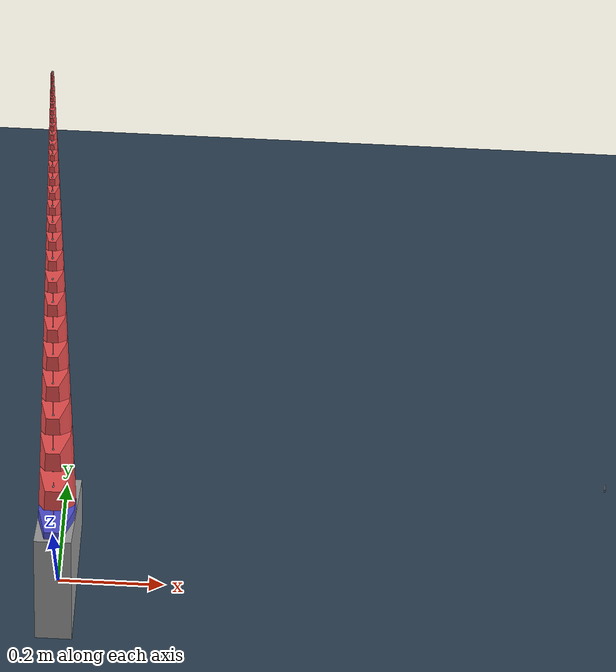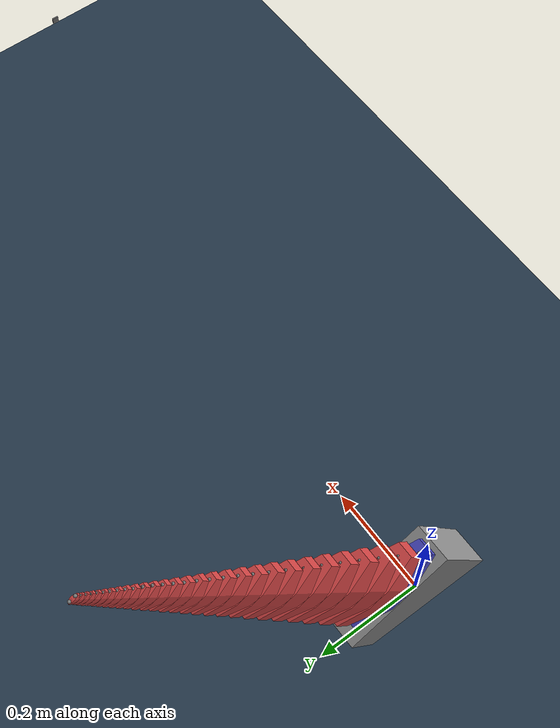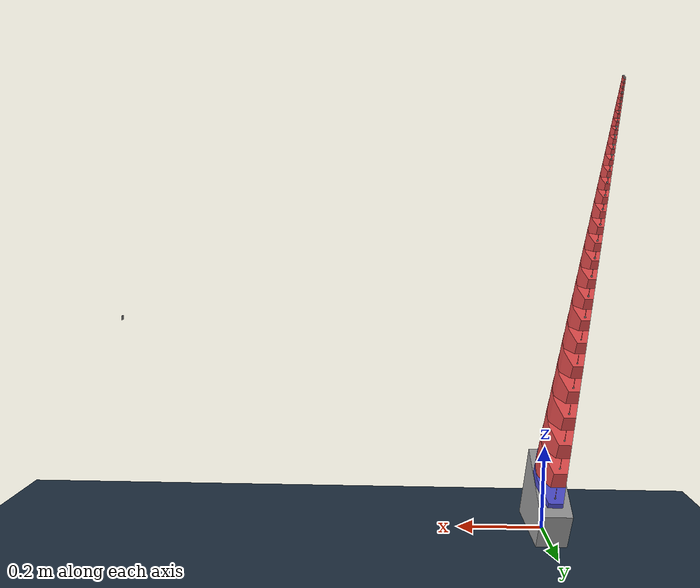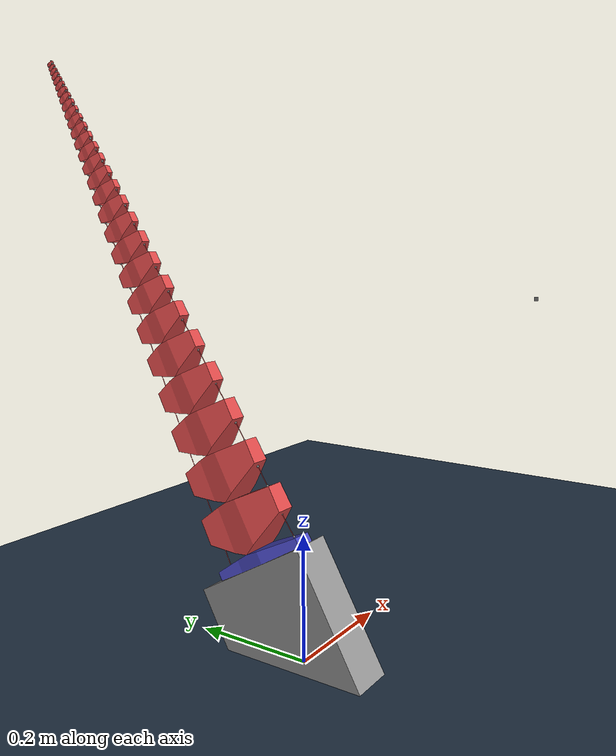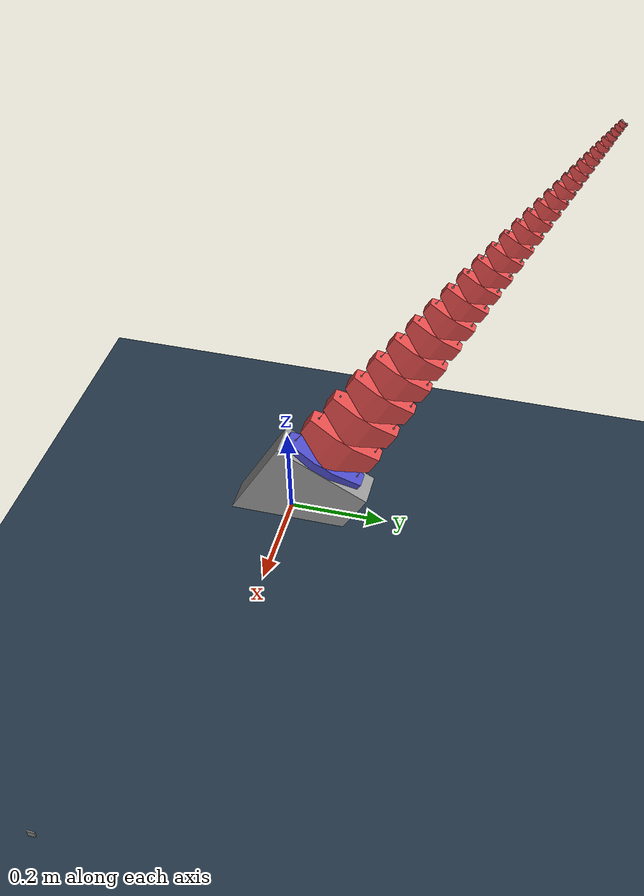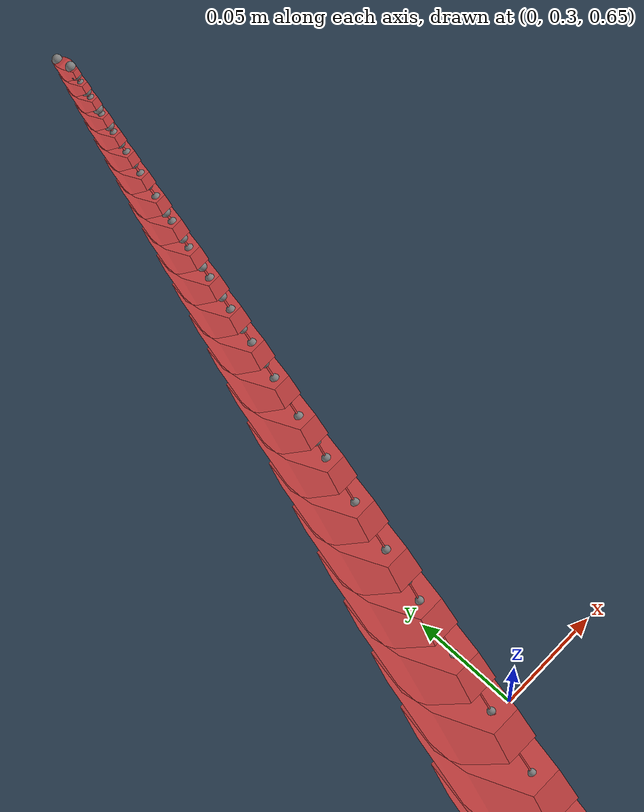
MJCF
<mujoco model="2DspiralLong">
<compiler angle="radian" />
<option gravity="0 0 0"/>
<size nconmax="5000" njmax="5000"/>

<default>
	<default class="freej">
		<joint type="free" damping="0" armature="0" limited="false"/>
	</default>
</default>

<asset>
	<mesh name="platform_mesh" file="3D/p_platform.STL" scale="0.001 0.001 0.001"/>
	<mesh name="base_mesh" file="3D/P_0Base.STL" scale="0.001 0.001 0.001"/>
	<mesh name="segment_mesh" file="3D/P_1_3.STL" scale="0.001 0.001 0.001"/>
	<mesh name="segment_2_mesh" file="3D/P_1_3.STL" scale="0.00091266 0.00091266 0.00091266"/>
	<mesh name="segment_3_mesh" file="3D/P_1_3.STL" scale="0.00083295 0.00083295 0.00083295"/>
	<mesh name="segment_4_mesh" file="3D/P_1_3.STL" scale="0.00076019 0.00076019 0.00076019"/>
	<mesh name="segment_5_mesh" file="3D/P_1_3.STL" scale="0.00069380 0.00069380 0.00069380"/>
	<mesh name="segment_6_mesh" file="3D/P_1_3.STL" scale="0.00063320 0.00063320 0.00063320"/>
	<mesh name="segment_7_mesh" file="3D/P_1_3.STL" scale="0.00057790 0.00057790 0.00057790"/>
	<mesh name="segment_8_mesh" file="3D/P_1_3.STL" scale="0.00052742 0.00052742 0.00052742"/>
	<mesh name="segment_9_mesh" file="3D/P_1_3.STL" scale="0.00048135 0.00048135 0.00048135"/>
	<mesh name="segment_10_mesh" file="3D/P_1_3.STL" scale="0.00043931 0.00043931 0.00043931"/>
	<mesh name="segment_11_mesh" file="3D/P_1_3.STL" scale="0.00040094 0.00040094 0.00040094"/>
	<mesh name="segment_12_mesh" file="3D/P_1_3.STL" scale="0.00036592 0.00036592 0.00036592"/>
	<mesh name="segment_13_mesh" file="3D/P_1_3.STL" scale="0.00033396 0.00033396 0.00033396"/>
	<mesh name="segment_14_mesh" file="3D/P_1_3.STL" scale="0.00030479 0.00030479 0.00030479"/>
	<mesh name="segment_15_mesh" file="3D/P_1_3.STL" scale="0.00027817 0.00027817 0.00027817"/>
	<mesh name="segment_16_mesh" file="3D/P_1_3.STL" scale="0.00025388 0.00025388 0.00025388"/>
	<mesh name="segment_17_mesh" file="3D/P_1_3.STL" scale="0.00023170 0.00023170 0.00023170"/>
	<mesh name="segment_18_mesh" file="3D/P_1_3.STL" scale="0.00021147 0.00021147 0.00021147"/>
	<mesh name="segment_19_mesh" file="3D/P_1_3.STL" scale="0.00019300 0.00019300 0.00019300"/>
	<mesh name="segment_20_mesh" file="3D/P_1_3.STL" scale="0.00017614 0.00017614 0.00017614"/>
	<mesh name="segment_21_mesh" file="3D/P_1_3.STL" scale="0.00016075 0.00016075 0.00016075"/>
	<mesh name="segment_22_mesh" file="3D/P_1_3.STL" scale="0.00014671 0.00014671 0.00014671"/>
	<mesh name="segment_23_mesh" file="3D/P_1_3.STL" scale="0.00013390 0.00013390 0.00013390"/>
	<mesh name="segment_24_mesh" file="3D/P_1_3.STL" scale="0.00012220 0.00012220 0.00012220"/>
	<mesh name="segment_25_mesh" file="3D/P_1_3.STL" scale="0.00011153 0.00011153 0.00011153"/>
	<mesh name="segment_26_mesh" file="3D/P_1_3.STL" scale="0.00010179 0.00010179 0.00010179"/>
	<mesh name="segment_27_mesh" file="3D/P_1_3.STL" scale="0.00009290 0.00009290 0.00009290"/>
	<mesh name="segment_28_mesh" file="3D/P_1_3.STL" scale="0.00008479 0.00008479 0.00008479"/>

	<texture name="texplane" type="2d" builtin="checker" rgb1=".2 .3 .4" rgb2=".1 0.15 0.2" width="512" height="512" mark="cross" markrgb=".8 .8 .8"/>
	<texture type="skybox" builtin="gradient" rgb1="0.3 0.5 0.7" rgb2="0 0 0" width="512" height="3072" />
	<material name="matplane" reflectance="0.3" texture="texplane" texrepeat="1 1" texuniform="true"/>
</asset>

<worldbody>

<geom name="ground" type="plane" size="10 10 1" pos="0 0 -0.1" quat="1 0 0 0" material="matplane" condim="1"/>
<light pos="1 0.5 0.7" dir="-1 -0.5 -1" directional="true" castshadow="false" diffuse="0.4 0.4 0.4" specular="0.1 0.1 0.1" />
<body name="mocapt" mocap="true" pos="1 0 0.5">
	<geom type="box" group="1" size="0.001 0.005 0.005" contype="0" conaffinity="0" rgba=".5 .5 .5 1"/>
</body>

    <!-- Platform body -->
    <body name="platform" pos="0 0 0">
        <geom type="mesh" mesh="platform_mesh" rgba="0.6 0.6 0.6 1"/>

        <!-- Base body sitting on top -->
        <body name="base" pos="0 0.070 0.140" euler="-0.524 0 1.57"> <!-- Adjust Z based on platform height -->
            <geom type="mesh" mesh="base_mesh" rgba="0.3 0.3 0.8 1"/>
			<site name="b_1" pos="-0.0725 0 0.020" size="0.002 0.002 0.002"/>
			<site name="b_2" pos="0.0725 0 0.020" size="0.002 0.002 0.002"/>
        </body>

		<!-- Manipulator Segments -->
		<body name="segment_1" pos="0 0.126 0.2362" euler="-0.524 3.14 1.571">
    	<geom type="mesh" mesh="segment_mesh" rgba="0.9 0.3 0.3 1"/>
		<joint name="Joint1" pos="0 0 0.086" axis="0 -1 0" limited="true" range="-0.523 0.523" stiffness="0.081647" damping="0.083295"/>
		<inertial pos="0 0 0" quat="1 0 0 0" mass="0.007602" diaginertia="0.000364 0.000364 0.00045711"/>
		<site name="s1_1" pos="0.069 0 0.052500" size="0.002 0.002 0.002"/>
		<site name="s1_2" pos="-0.069 0 0.052500" size="0.002 0.002 0.002"/>
		<site name="s1_3" pos="0.065 0 0.0050" size="0.002 0.002 0.002"/>
		<site name="s1_4" pos="-0.065 0 0.0050" size="0.002 0.002 0.002"/>

				    <body name="segment_2" pos="0 0 -0.0782" euler="0 0 0">
       				<geom type="mesh" mesh="segment_2_mesh" rgba="0.9 0.3 0.3 1"/>
					<joint name="Joint2" pos="0 0 0.0782" axis="0 -1 0" limited="true" range="-0.523 0.523" stiffness="0.034692" damping="0.00693847"/>
					<inertial pos="0 0 0" quat="1 0 0 0" mass="0.00577752" diaginertia="0.000303212 0.000303212 0.000380773"/>
					<site name="s2_1" pos="0.0635 0 0.050000" size="0.002 0.002 0.002"/>
					<site name="s2_2" pos="-0.0635 0 0.050000" size="0.002 0.002 0.002"/>
					<site name="s2_3" pos="0.060 0 0.0050" size="0.002 0.002 0.002"/>
					<site name="s2_4" pos="-0.060 0 0.0050" size="0.002 0.002 0.002"/>

												    <body name="segment_3" pos="0 0 -0.07135" euler="0 0 0">
													<geom type="mesh" mesh="segment_3_mesh" rgba="0.9 0.3 0.3 1"/>
													<joint name="Joint3" pos="0 0 0.07138" axis="0 -1 0" limited="true" range="-0.523 0.523" stiffness="0.0288984" damping="0.00577975"/>
													<inertial pos="0 0 0" quat="1 0 0 0" mass="0.00439092" diaginertia="0.000252576 0.000252576 0.000317184"/>
													<site name="s3_1" pos="0.058 0 0.045000" size="0.002 0.002 0.002"/>
													<site name="s3_2" pos="-0.058 0 0.045000" size="0.002 0.002 0.002"/>
													<site name="s3_3" pos="0.055 0 0.005000" size="0.002 0.002 0.002"/>
													<site name="s3_4" pos="-0.055 0 0.005000" size="0.002 0.002 0.002"/>

																		<body name="segment_4" pos="0 0 -0.06511" euler="0 0 0">
																		<geom type="mesh" mesh="segment_4_mesh" rgba="0.9 0.3 0.3 1"/>
																		<joint name="Joint4" pos="0 0 0.06537634" axis="0 -1 0" limited="true" range="-0.523 0.523" stiffness="0.0240724" damping="0.00481453"/>
																		<inertial pos="0 0 0" quat="1 0 0 0" mass="0.0033371" diaginertia="0.000210395 0.000210395 0.000264214"/>
																		<site name="s4_1" pos="0.0525 0 0.0400" size="0.002 0.002 0.002"/>
																		<site name="s4_2" pos="-0.0525 0 0.0400" size="0.002 0.002 0.002"/>
																		<site name="s4_3" pos="0.0500 0 0.00500" size="0.002 0.002 0.002"/>
																		<site name="s4_4" pos="-0.0500 0 0.00500" size="0.002 0.002 0.002"/>

																															<body name="segment_5" pos="0 0 -0.0594" euler="0 0 0">
																															<geom type="mesh" mesh="segment_5_mesh" rgba="0.9 0.3 0.3 1"/>
																															<joint name="Joint5" pos="0 0 0.0596668" axis="0 -1 0" limited="true" range="-0.523 0.523" stiffness="0.0200523" damping="0.0040105"/>
																															<inertial pos="0 0 0" quat="1 0 0 0" mass="0.00253619" diaginertia="0.000175259 0.000175259 0.00022009"/>
																															<site name="s5_1" pos="0.0475 0 0.037500" size="0.002 0.002 0.002"/>
																															<site name="s5_2" pos="-0.0475 0 0.037500" size="0.002 0.002 0.002"/>
																															<site name="s5_3" pos="0.0450 0 0.00500" size="0.002 0.002 0.002"/>
																															<site name="s5_4" pos="-0.0450 0 0.00500" size="0.002 0.002 0.002"/>

																																													<body name="segment_6" pos="0 0 -0.05420" euler="0 0 0">
																																													<geom type="mesh" mesh="segment_6_mesh" rgba="0.9 0.3 0.3 1"/>
																																													<joint name="Joint6" pos="0 0 0.0544552" axis="0 -1 0" limited="true" range="-0.523 0.523" stiffness="0.0167035" damping="0.00334075"/>
																																													<inertial pos="0 0 0" quat="1 0 0 0" mass="0.00192751" diaginertia="0.000145991 0.000145991 0.000183335"/>
																																													<site name="s6_1" pos="0.0425 0 0.0350" size="0.002 0.002 0.002"/>
																																													<site name="s6_2" pos="-0.0425 0 0.0350" size="0.002 0.002 0.002"/>
																																													<site name="s6_3" pos="0.0400 0 0.0050" size="0.002 0.002 0.002"/>
																																													<site name="s6_4" pos="-0.0400 0 0.0050" size="0.002 0.002 0.002"/>

											<body name="segment_7" pos="0 0 -0.0495" euler="0 0 0">
											<geom type="mesh" mesh="segment_7_mesh" rgba="0.9 0.3 0.3 1"/>
											<joint name="Joint7" pos="0 0 0.0496994" axis="0 -1 0" limited="true" range="-0.523 0.523" stiffness="0.0139141" damping="0.00278284"/>
											<inertial pos="0 0 0" quat="1 0 0 0" mass="0.0014649" diaginertia="0.000121611 0.000121611 0.000152718"/>
											<site name="s7_1" pos="0.0390 0 0.0310" size="0.002 0.002 0.002"/>
											<site name="s7_2" pos="-0.0390 0 0.0310" size="0.002 0.002 0.002"/>
											<site name="s7_3" pos="0.0365 0 0.003300" size="0.002 0.002 0.002"/>
											<site name="s7_4" pos="-0.0365 0 0.003300" size="0.002 0.002 0.002"/>

																									<body name="segment_8" pos="0 0 -0.04515" euler="0 0 0">
																									<geom type="mesh" mesh="segment_8_mesh" rgba="0.9 0.3 0.3 1"/>
																									<joint name="Joint8" pos="0 0 0.04535812" axis="0 -1 0" limited="true" range="-0.523 0.523" stiffness="0.0115904" damping="0.00231811"/>
																									<inertial pos="0 0 0" quat="1 0 0 0" mass="0.00111333" diaginertia="0.000101302 0.000101302 0.000127214"/>
																									<site name="s8_1" pos="0.0350 0 0.0295" size="0.002 0.002 0.002"/>
																									<site name="s8_2" pos="-0.0350 0 0.0295" size="0.002 0.002 0.002"/>
																									<site name="s8_3" pos="0.0327 0 0.0026" size="0.002 0.002 0.002"/>
																									<site name="s8_4" pos="-0.0327 0 0.0026" size="0.002 0.002 0.002"/>

													<body name="segment_9" pos="0 0 -0.0412" euler="0 0 0">
													<geom type="mesh" mesh="segment_9_mesh" rgba="0.9 0.3 0.3 1"/>
													<joint name="Joint9" pos="0 0 0.0413961" axis="0 -1 0" limited="true" range="-0.523 0.523" stiffness="0.00965481" damping="0.00193099"/>
													<inertial pos="0 0 0" quat="1 0 0 0" mass="0.000846129" diaginertia="8.43843e-05 8.43843e-05 0.000105969"/>
													<site name="s9_1" pos="0.0322 0 0.0260" size="0.002 0.002 0.002"/>
													<site name="s9_2" pos="-0.0322 0 0.0260" size="0.002 0.002 0.002"/>
													<site name="s9_3" pos="0.0300 0 0.0019" size="0.002 0.002 0.002"/>
													<site name="s9_4" pos="-0.0300 0 0.0019" size="0.002 0.002 0.002"/>

				<body name="segment_10" pos="0 0 -0.0376" euler="0 0 0">
				<geom type="mesh" mesh="segment_10_mesh" rgba="0.9 0.3 0.3 1"/>
				<joint name="Joint10" pos="0 0 0.03778066" axis="0 -1 0" limited="true" range="-0.523 0.523" stiffness="0.00804246" damping="0.00160851"/>
				<inertial pos="0 0 0" quat="1 0 0 0" mass="0.000643058" diaginertia="7.02921e-05 7.02921e-05 8.82726e-05"/>
				<site name="s10_1" pos="0.0294 0 0.0235" size="0.002 0.002 0.002"/>
				<site name="s10_2" pos="-0.0294 0 0.0235" size="0.002 0.002 0.002"/>
				<site name="s10_3" pos="0.0276 0 0.00212" size="0.002 0.002 0.002"/>
				<site name="s10_4" pos="-0.0276 0 0.00212" size="0.002 0.002 0.002"/>

										<body name="segment_11" pos="0 0 -0.0343" euler="0 0 0">
															<geom type="mesh" mesh="segment_11_mesh" rgba="0.9 0.3 0.3 1"/>
															<joint name="Joint11" pos="0 0 0.03448084" axis="0 -1 0" limited="true" range="-0.523 0.523" stiffness="0.00669937" damping="0.00133989"/>
															<inertial pos="0 0 0" quat="1 0 0 0" mass="0.000488724" diaginertia="5.85533e-05 5.85533e-05 7.3531e-05"/>
															<site name="s11_1" pos="0.0280 0 0.0215" size="0.002 0.002 0.002"/>
															<site name="s11_2" pos="-0.0280 0 0.0215" size="0.002 0.002 0.002"/>
															<site name="s11_3" pos="0.0249 0 0.0020" size="0.002 0.002 0.002"/>
															<site name="s11_4" pos="-0.0249 0 0.0020" size="0.002 0.002 0.002"/>

										<body name="segment_12" pos="0 0 -0.0313" euler="0 0 0">
										<geom type="mesh" mesh="segment_12_mesh" rgba="0.9 0.3 0.3 1"/>
										<joint name="Joint12" pos="0 0 0.03146912" axis="0 -1 0" limited="true" range="-0.523 0.523" stiffness="0.00558057" damping="0.00111613"/>
										<inertial pos="0 0 0" quat="1 0 0 0" mass="0.00037143" diaginertia="4.87749e-05 4.87749e-05 6.12514e-05"/>
										<site name="s12_1" pos="0.0240 0 0.0197" size="0.002 0.002 0.002"/>
										<site name="s12_2" pos="-0.0240 0 0.0197" size="0.002 0.002 0.002"/>
										<site name="s12_3" pos="0.0225 0 0.0020" size="0.002 0.002 0.002"/>
										<site name="s12_4" pos="-0.0225 0 0.0020" size="0.002 0.002 0.002"/>

																			<body name="segment_13" pos="0 0 -0.0286" euler="0 0 0">
																			<geom type="mesh" mesh="segment_13_mesh" rgba="0.9 0.3 0.3 1"/>
																			<joint name="Joint13" pos="0 0 0.02872056" axis="0 -1 0" limited="true" range="-0.523 0.523" stiffness="0.00464862" damping="0.000929735"/>
																			<inertial pos="0 0 0" quat="1 0 0 0" mass="0.000282287" diaginertia="4.06295e-05 4.06295e-05 5.10224e-05"/>
																			<site name="s13_1" pos="0.0221 0 0.0181" size="0.002 0.002 0.002"/>
																			<site name="s13_2" pos="-0.0221 0 0.0181" size="0.002 0.002 0.002"/>
																			<site name="s13_3" pos="0.0206 0 0.0020" size="0.002 0.002 0.002"/>
																			<site name="s13_4" pos="-0.0206 0 0.0020" size="0.002 0.002 0.002"/>

																				<body name="segment_14" pos="0 0 -0.0261" euler="0 0 0">
																				<geom type="mesh" mesh="segment_14_mesh" rgba="0.9 0.3 0.3 1"/>
																				<joint name="Joint14" pos="0 0 0.02621194" axis="0 -1 0" limited="true" range="-0.523 0.523" stiffness="0.0038723" damping="0.000774469"/>
																				<inertial pos="0 0 0" quat="1 0 0 0" mass="0.000214538" diaginertia="3.38444e-05 3.38444e-05 4.25016e-05"/>
																				<site name="s14_1" pos="0.0208 0 0.0167" size="0.002 0.002 0.002"/>
																				<site name="s14_2" pos="-0.0208 0 0.0167" size="0.002 0.002 0.002"/>
																				<site name="s14_3" pos="0.0185 0 0.0020" size="0.002 0.002 0.002"/>
																				<site name="s14_4" pos="-0.0185 0 0.0020" size="0.002 0.002 0.002"/>

																					<body name="segment_15" pos="0 0 -0.0238" euler="0 0 0">
																					<geom type="mesh" mesh="segment_15_mesh" rgba="0.9 0.3 0.3 1"/>
																					<joint name="Joint15" pos="0 0 0.02392262" axis="0 -1 0" limited="true" range="-0.523 0.523" stiffness="0.00322562" damping="0.000645133"/>
																					<inertial pos="0 0 0" quat="1 0 0 0" mass="0.000163049" diaginertia="2.81924e-05 2.81924e-05 3.54039e-05"/>
																					<site name="s15_1" pos="0.0176 0 0.0155" size="0.002 0.002 0.002"/>
																					<site name="s15_2" pos="-0.0176 0 0.0155" size="0.002 0.002 0.002"/>
																					<site name="s15_3" pos="0.0175 0 0.0020" size="0.002 0.002 0.002"/>
																					<site name="s15_4" pos="-0.0175 0 0.0020" size="0.002 0.002 0.002"/>

																					<body name="segment_16" pos="0 0 -0.0217" euler="0 0 0">
																						<geom type="mesh" mesh="segment_16_mesh" rgba="0.9 0.3 0.3 1"/>
																						<joint name="Joint16" pos="0 0 0.02183368" axis="0 -1 0" limited="true" range="-0.523 0.523" stiffness="0.00268694" damping="0.000537395"/>
																						<inertial pos="0 0 0" quat="1 0 0 0" mass="0.000123917" diaginertia="2.34842e-05 2.34842e-05 2.94914e-05"/>
																						<site name="s16_1" pos="0.0165 0 0.0144" size="0.002 0.002 0.002"/>
																						<site name="s16_2" pos="-0.0165 0 0.0144" size="0.002 0.002 0.002"/>
																						<site name="s16_3" pos="0.0165 0 0.0020" size="0.002 0.002 0.002"/>
																						<site name="s16_4" pos="-0.0165 0 0.0020" size="0.002 0.002 0.002"/>

																							<body name="segment_17" pos="0 0 -0.01985" euler="0 0 0">
																							<geom type="mesh" mesh="segment_17_mesh" rgba="0.9 0.3 0.3 1"/>
																							<joint name="Joint17" pos="0 0 0.0199262" axis="0 -1 0" limited="true" range="-0.523 0.523" stiffness="0.00223823" damping="0.00044765"/>
																							<inertial pos="0 0 0" quat="1 0 0 0" mass="9.41771e-05" diaginertia="1.95624e-05 1.95624e-05 2.45664e-05"/>
																							<site name="s17_1" pos="0.0154 0 0.0134" size="0.002 0.002 0.002"/>
																							<site name="s17_2" pos="-0.0154 0 0.0134" size="0.002 0.002 0.002"/>
																							<site name="s17_3" pos="0.0155 0 0.0020" size="0.002 0.002 0.002"/>
																							<site name="s17_4" pos="-0.0155 0 0.0020" size="0.002 0.002 0.002"/>

																								<body name="segment_18" pos="0 0 -0.0181" euler="0 0 0">
																								<geom type="mesh" mesh="segment_18_mesh" rgba="0.9 0.3 0.3 1"/>
																								<joint name="Joint18" pos="0 0 0.01818642" axis="0 -1 0" limited="true" range="-0.523 0.523" stiffness="0.00186444" damping="0.000372893"/>
																								<inertial pos="0 0 0" quat="1 0 0 0" mass="7.15746e-05" diaginertia="1.62955e-05 1.62955e-05 2.04638e-05"/>
																								<site name="s18_1" pos="0.0144 0 0.0125" size="0.002 0.002 0.002"/>
																								<site name="s18_2" pos="-0.0144 0 0.0125" size="0.002 0.002 0.002"/>
																								<site name="s18_3" pos="0.0138 0 0.0020" size="0.002 0.002 0.002"/>
																								<site name="s18_4" pos="-0.0138 0 0.0020" size="0.002 0.002 0.002"/>

																									<body name="segment_19" pos="0 0 -0.01655" euler="0 0 0">
																									<geom type="mesh" mesh="segment_19_mesh" rgba="0.9 0.3 0.3 1"/>
																									<joint name="Joint19" pos="0 0 0.016598" axis="0 -1 0" limited="true" range="-0.523 0.523" stiffness="0.00155308" damping="0.00031062"/>
																									<inertial pos="0 0 0" quat="1 0 0 0" mass="5.43967e-05" diaginertia="1.35741e-05 1.35741e-05 1.70463e-05"/>
																									<site name="s19_1" pos="0.0130 0 0.0117" size="0.002 0.002 0.002"/>
																									<site name="s19_2" pos="-0.0130 0 0.0117" size="0.002 0.002 0.002"/>
																									<site name="s19_3" pos="0.0115 0 0.0020" size="0.002 0.002 0.002"/>
																									<site name="s19_4" pos="-0.0115 0 0.0020" size="0.002 0.002 0.002"/>

																										<body name="segment_20" pos="0 0 -0.01508" euler="0 0 0">
																										<geom type="mesh" mesh="segment_20_mesh" rgba="0.9 0.3 0.3 1"/>
																										<joint name="Joint20" pos="0 0 0.01514804" axis="0 -1 0" limited="true" range="-0.523 0.523" stiffness="0.00129372" damping="0.000258746"/>
																										<inertial pos="0 0 0" quat="1 0 0 0" mass="4.13415e-05" diaginertia="1.13072e-05 1.13072e-05 1.41996e-05"/>
																										<site name="s20_1" pos="0.0110 0 0.0110" size="0.002 0.002 0.002"/>
																										<site name="s20_2" pos="-0.0110 0 0.0110" size="0.002 0.002 0.002"/>
																										<site name="s20_3" pos="0.0109 0 0.0020" size="0.002 0.002 0.002"/>
																										<site name="s20_4" pos="-0.0109 0 0.0020" size="0.002 0.002 0.002"/>

										<body name="segment_21" pos="0 0 -0.01377" euler="0 0 0">
										<geom type="mesh" mesh="segment_21_mesh" rgba="0.9 0.3 0.3 1"/>
										<joint name="Joint21" pos="0 0 0.0138245" axis="0 -1 0" limited="true" range="-0.523 0.523" stiffness="0.00107766" damping="0.000215536"/>
										<inertial pos="0 0 0" quat="1 0 0 0" mass="3.14195e-05" diaginertia="9.41893e-06 9.41893e-06 1.18283e-05"/>
										<site name="s21_1" pos="0.0097 0 0.0104" size="0.002 0.002 0.002"/>
										<site name="s21_2" pos="-0.0097 0 0.0104" size="0.002 0.002 0.002"/>
										<site name="s21_3" pos="0.0098 0 0.0020" size="0.002 0.002 0.002"/>
										<site name="s21_4" pos="-0.0098 0 0.0020" size="0.002 0.002 0.002"/>

											<body name="segment_22" pos="0 0 -0.01258" euler="0 0 0">
											<geom type="mesh" mesh="segment_22_mesh" rgba="0.9 0.3 0.3 1"/>
											<joint name="Joint22" pos="0 0 0.01261706" axis="0 -1 0" limited="true" range="-0.523 0.523" stiffness="0.000897695" damping="0.000179541"/>
											<inertial pos="0 0 0" quat="1 0 0 0" mass="2.38788e-05" diaginertia="7.84597e-06 7.84597e-06 9.85294e-06"/>
											<site name="s22_1" pos="0.0086 0 0.0079" size="0.002 0.002 0.002"/>
											<site name="s22_2" pos="-0.0086 0 0.0079" size="0.002 0.002 0.002"/>
											<site name="s22_3" pos="0.0087 0 0.0020" size="0.002 0.002 0.002"/>
											<site name="s22_4" pos="-0.0087 0 0.0020" size="0.002 0.002 0.002"/>

												<body name="segment_23" pos="0 0 -0.01149" euler="0 0 0">
												<geom type="mesh" mesh="segment_23_mesh" rgba="0.9 0.3 0.3 1"/>
												<joint name="Joint23" pos="0 0 0.0115154" axis="0 -1 0" limited="true" range="-0.523 0.523" stiffness="0.00074778" damping="0.000149558"/>
												<inertial pos="0 0 0" quat="1 0 0 0" mass="1.81479e-05" diaginertia="6.53569e-06 6.53569e-06 8.2075e-06"/>
												<site name="s23_1" pos="0.0076 0 0.0075" size="0.002 0.002 0.002"/>
												<site name="s23_2" pos="-0.0076 0 0.0075" size="0.002 0.002 0.002"/>
												<site name="s23_3" pos="0.0078 0 0.0020" size="0.002 0.002 0.002"/>
												<site name="s23_4" pos="-0.0078 0 0.0020" size="0.002 0.002 0.002"/>

													<body name="segment_24" pos="0 0 -0.01048" euler="0 0 0">
													<geom type="mesh" mesh="segment_24_mesh" rgba="0.9 0.3 0.3 1"/>
													<joint name="Joint24" pos="0 0 0.0105092" axis="0 -1 0" limited="true" range="-0.523 0.523" stiffness="0.000622901" damping="0.000124582"/>
													<inertial pos="0 0 0" quat="1 0 0 0" mass="1.37924e-05" diaginertia="5.44423e-06 5.44423e-06 6.83685e-06"/>
													<site name="s24_1" pos="0.0066 0 0.0072" size="0.002 0.002 0.002"/>
													<site name="s24_2" pos="-0.0066 0 0.0072" size="0.002 0.002 0.002"/>
													<site name="s24_3" pos="0.0069 0 0.0020" size="0.002 0.002 0.002"/>
													<site name="s24_4" pos="-0.0069 0 0.0020" size="0.002 0.002 0.002"/>

														<body name="segment_25" pos="0 0 -0.00956" euler="0 0 0">
														<geom type="mesh" mesh="segment_25_mesh" rgba="0.9 0.3 0.3 1"/>
														<joint name="Joint25" pos="0 0 0.00959158" axis="0 -1 0" limited="true" range="-0.523 0.523" stiffness="0.000518876" damping="0.000103776"/>
														<inertial pos="0 0 0" quat="1 0 0 0" mass="1.04822e-05" diaginertia="4.53504e-06 4.53504e-06 5.69509e-06"/>
														<site name="s25_1" pos="0.0064 0 0.0070" size="0.002 0.002 0.002"/>
														<site name="s25_2" pos="-0.0064 0 0.0070" size="0.002 0.002 0.002"/>
														<site name="s25_3" pos="0.0061 0 0.0020" size="0.002 0.002 0.002"/>
														<site name="s25_4" pos="-0.0061 0 0.0020" size="0.002 0.002 0.002"/>

																			<body name="segment_26" pos="0 0 -0.00873" euler="0 0 0">
																			<geom type="mesh" mesh="segment_26_mesh" rgba="0.9 0.3 0.3 1"/>
																			<joint name="Joint26" pos="0 0 0.00875394" axis="0 -1 0" limited="true" range="-0.523 0.523" stiffness="0.000432224" damping="8.64458e-05"/>
																			<inertial pos="0 0 0" quat="1 0 0 0" mass="7.9665e-06" diaginertia="3.77769e-06 3.77769e-06 4.74401e-06"/>
																			<site name="s26_1" pos="0.0057 0 0.0068" size="0.002 0.002 0.002"/>
																			<site name="s26_2" pos="-0.0057 0 0.0068" size="0.002 0.002 0.002"/>
																			<site name="s26_3" pos="0.0054 0 0.0020" size="0.002 0.002 0.002"/>
																			<site name="s26_4" pos="-0.0054 0 0.0020" size="0.002 0.002 0.002"/>

																				<body name="segment_27" pos="0 0 -0.00797" euler="0 0 0">
																				<geom type="mesh" mesh="segment_27_mesh" rgba="0.9 0.3 0.3 1"/>
																				<joint name="Joint27" pos="0 0 0.0079894" axis="0 -1 0" limited="true" range="-0.523 0.523" stiffness="0.000360042" damping="7.20094e-05"/>
																				<inertial pos="0 0 0" quat="1 0 0 0" mass="6.05454e-06" diaginertia="3.14682e-06 3.14682e-06 3.95176e-06"/>
																				<site name="s27_1" pos="0.0047 0 0.0056" size="0.002 0.002 0.002"/>
																				<site name="s27_2" pos="-0.0047 0 0.0056" size="0.002 0.002 0.002"/>
																				<site name="s27_3" pos="0.0048 0 0.0020" size="0.002 0.002 0.002"/>
																				<site name="s27_4" pos="-0.0048 0 0.0020" size="0.002 0.002 0.002"/>

																					<body name="segment_28" pos="0 0 -0.00727" euler="0 0 0">
																					<geom type="mesh" mesh="segment_28_mesh" rgba="0.9 0.3 0.3 1"/>
																					<joint name="Joint28" pos="0 0 0.00729194" axis="0 -1 0" limited="true" range="-0.523 0.523" stiffness="0.000299915" damping="5.99838e-05"/>
																					<inertial pos="0 0 0" quat="1 0 0 0" mass="4.60145e-06" diaginertia="2.6213e-06 2.6213e-06 3.29182e-06"/>
																					<site name="s28_1" pos="0.0045 0 0.0044" size="0.002 0.002 0.002"/>
																					<site name="s28_2" pos="-0.0045 0 0.0044" size="0.002 0.002 0.002"/>
																					<site name="s28_3" pos="0.0042 0 0.00005" size="0.002 0.002 0.002"/>
																					<site name="s28_4" pos="-0.0042 0 0.00005" size="0.002 0.002 0.002"/>

			</body>

				</body>

				</body>
			</body>

				</body>

				</body>

																													</body>

																													</body>

																													</body>

																													</body>

																													</body>

																													</body>

																													</body>

																													</body>

																													</body>

																													</body>

																													</body>

																													</body>

																													</body>

																									</body>

												</body>

												</body>

												</body>
																								</body>

																								</body>

												</body>

								</body>
    				</body>
		</body>

</worldbody>

<tendon>
  <spatial name="t1" width="0.0004" frictionloss="0.1" rgba=".95 .3 .3 1" limited="true" range="0.5 2.0">
	<site site="b_2"/>
	<site site="s1_1"/>
    <site site="s1_3"/>
    <site site="s2_1"/>
    <site site="s2_3"/>
    <site site="s3_1"/>
    <site site="s3_3"/>
    <site site="s4_1"/>
    <site site="s4_3"/>
    <site site="s5_1"/>
    <site site="s5_3"/>
    <site site="s6_1"/>
    <site site="s6_3"/>
    <site site="s7_1"/>
    <site site="s7_3"/>
    <site site="s8_1"/>
    <site site="s8_3"/>
    <site site="s9_1"/>
    <site site="s9_3"/>
    <site site="s10_1"/>
    <site site="s10_3"/>
    <site site="s11_1"/>
    <site site="s11_3"/>
    <site site="s12_1"/>
    <site site="s12_3"/>
    <site site="s13_1"/>
    <site site="s13_3"/>
    <site site="s14_1"/>
    <site site="s14_3"/>
    <site site="s15_1"/>
    <site site="s15_3"/>
    <site site="s16_1"/>
    <site site="s16_3"/>
    <site site="s17_1"/>
    <site site="s17_3"/>
    <site site="s18_1"/>
    <site site="s18_3"/>
    <site site="s19_1"/>
    <site site="s19_3"/>
    <site site="s20_1"/>
    <site site="s20_3"/>
    <site site="s21_1"/>
    <site site="s21_3"/>
    <site site="s22_1"/>
    <site site="s22_3"/>
    <site site="s23_1"/>
    <site site="s23_3"/>
    <site site="s24_1"/>
    <site site="s24_3"/>
    <site site="s25_1"/>
    <site site="s25_3"/>
    <site site="s26_1"/>
    <site site="s26_3"/>
    <site site="s27_1"/>
    <site site="s27_3"/>
    <site site="s28_1"/>
    <site site="s28_3"/>
  </spatial>
  <spatial name="t2" width="0.0004" frictionloss="0.1" rgba=".95 .3 .3 1" limited="true" range="0.5 2.0">
	<site site="b_1"/>
 	<site site="s1_2"/>
    <site site="s1_4"/>
    <site site="s2_2"/>
    <site site="s2_4"/>
    <site site="s3_2"/>
    <site site="s3_4"/>
    <site site="s4_2"/>
    <site site="s4_4"/>
    <site site="s5_2"/>
    <site site="s5_4"/>
    <site site="s6_2"/>
    <site site="s6_4"/>
    <site site="s7_2"/>
    <site site="s7_4"/>
    <site site="s8_2"/>
    <site site="s8_4"/>
    <site site="s9_2"/>
    <site site="s9_4"/>
    <site site="s10_2"/>
    <site site="s10_4"/>
    <site site="s11_2"/>
    <site site="s11_4"/>
    <site site="s12_2"/>
    <site site="s12_4"/>
    <site site="s13_2"/>
    <site site="s13_4"/>
    <site site="s14_2"/>
    <site site="s14_4"/>
    <site site="s15_2"/>
    <site site="s15_4"/>
    <site site="s16_2"/>
    <site site="s16_4"/>
    <site site="s17_2"/>
    <site site="s17_4"/>
    <site site="s18_2"/>
    <site site="s18_4"/>
    <site site="s19_2"/>
    <site site="s19_4"/>
    <site site="s20_2"/>
    <site site="s20_4"/>
    <site site="s21_2"/>
    <site site="s21_4"/>
    <site site="s22_2"/>
    <site site="s22_4"/>
    <site site="s23_2"/>
    <site site="s23_4"/>
    <site site="s24_2"/>
    <site site="s24_4"/>
    <site site="s25_2"/>
    <site site="s25_4"/>
    <site site="s26_2"/>
    <site site="s26_4"/>
    <site site="s27_2"/>
    <site site="s27_4"/>
    <site site="s28_2"/>
    <site site="s28_4"/>
  </spatial>
</tendon>

<actuator>
<muscle name="A_1" ctrllimited="true" lengthrange="0.5 2.0" ctrlrange="0 1" force="2" tendon="t1"/>
<muscle name="A_2" ctrllimited="true" lengthrange="0.5 2.0" ctrlrange="0 1" force="2" tendon="t2"/>
</actuator>

<equality>
    <weld body1="mocapt" body2="platform" solref="0.01 1" solimp=".9 .9 0.01"/>
</equality>

</mujoco>
